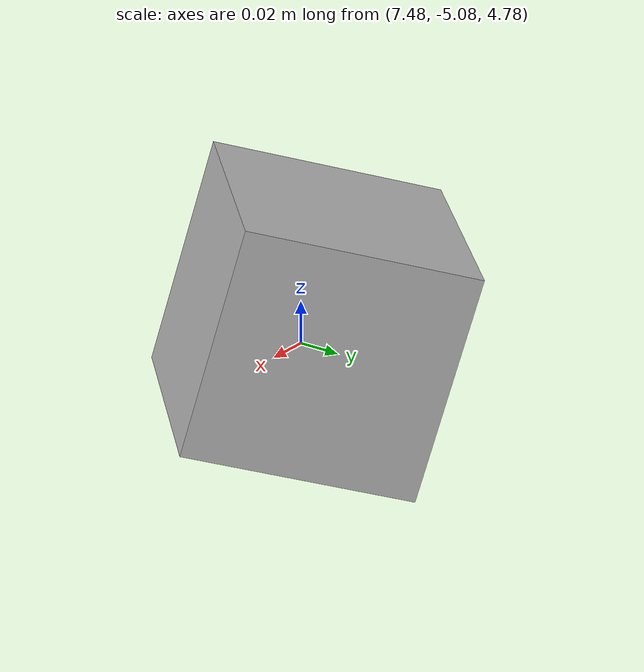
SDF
<?xml version="1.0" ?>
<sdf version="1.4">
  <world name="default">
    <!-- A global light source -->
    <include>
      <uri>model://sun</uri>
    </include>

    <include>
      <uri>model://ground_plane</uri>
    </include>

    <include>
      <uri>model://asphalt_plane</uri>
      <pose>-10 10 0 0 0 0.5</pose>
    </include>

  <model name='camera'>
    <static>true</static>
    <pose>7.56528 -5.01026 4.83852 -0.000001 0.275643 2.356194</pose>
      <link name='camera_body'>
        <visual name='visual'>
          <geometry>
            <box>
              <size>0.1 0.1 0.1</size>
            </box>
          </geometry>
        </visual>
        <sensor name='my_camera' type='camera'>
          <camera>
            <save enabled="true">
              <path>/tmp/gazebo_camera_video</path>
            </save>
            <horizontal_fov>1.047</horizontal_fov>
            <image>
              <width>1920</width>
              <height>1080</height>
            </image>
            <clip>
              <near>0.1</near>
              <far>100</far>
            </clip>
          </camera>
          <always_on>1</always_on>
          <update_rate>30</update_rate>
        </sensor>
      </link>
    </model>

  </world>
</sdf>
